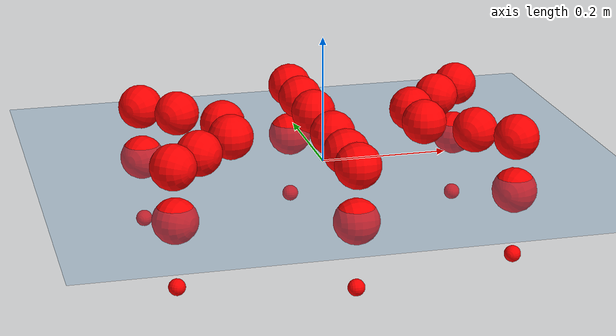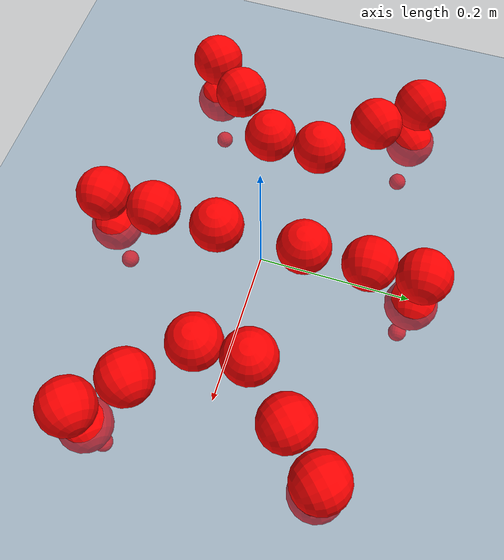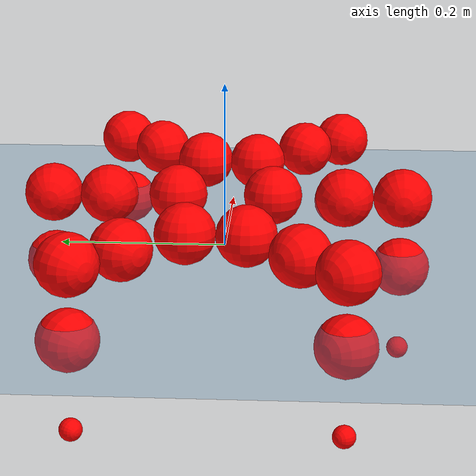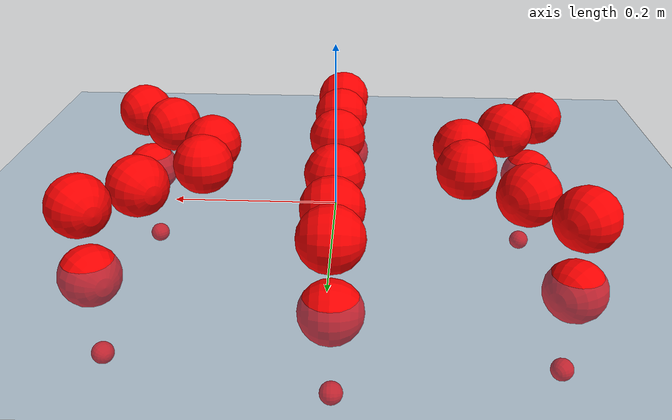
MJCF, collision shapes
<mujoco model="Golem">
  <compiler angle="radian" assetdir="assets" balanceinertia="true" inertiafromgeom="false"/>

  <option timestep="0.005" density="1.2" viscosity="2e-05"/>

  <size nkey="1"/>

  <visual>
    <quality shadowsize="8192"/>
    <map shadowclip="0.5"/>
  </visual>

  <default>
    <default class="/">
      <joint armature="0.01" damping="0.01" frictionloss="0.01"/>
      <geom contype="0" conaffinity="0" group="1" solref="-1000 -80"/>
      <site size="0.01 0.005 0.005" group="5"/>
      <general forcelimited="true" biastype="affine" gainprm="25" biasprm="0 -25 -0.5"/>
      <default class="visual">
        <geom type="mesh" group="2"/>
      </default>
      <default class="collision">
        <geom group="3"/>
      </default>
      <default class="foot">
        <geom size="0.01 0 0" condim="6" group="4" priority="1" solimp="0.015 1 0.01"/>
      </default>
      <default class="reward_collision_sphere">
        <geom group="5" rgba="1 0 0 1"/>
      </default>
    </default>
  </default>

  <asset>
    <texture type="skybox" colorspace="auto" name="//unnamed_texture_0" builtin="gradient" rgb1="0.95 0.95 0.95" rgb2="0.95 0.95 0.95" width="100" height="600"/>
    <texture type="2d" colorspace="auto" name="texplane" builtin="checker" rgb1="0.345 0.575 0.748" rgb2="0.345 0.575 0.748" markrgb="1 1 1" width="512" height="512"/>
    <material name="MatPlane" class="/" texture="texplane" texuniform="true" texrepeat="2 2" specular="0.9"/>
    <mesh name="body" class="/" file="body.stl" scale="0.001 0.001 0.001"/>
    <mesh name="coxa" class="/" file="coxa.stl" scale="0.001 0.001 0.001"/>
    <mesh name="femur" class="/" file="femur.stl" scale="0.001 0.001 0.001"/>
    <mesh name="tibia" class="/" file="tibia.stl" scale="0.001 0.001 0.001"/>
    <mesh name="tarsus" class="/" file="tarsus.stl" scale="0.001 0.001 0.001"/>
  </asset>

  <worldbody>
    <geom name="floor" class="/" size="100 100 0.125" type="plane" group="0" material="MatPlane"/>
    <light name="toplight_shadow" class="/" pos="0 0 5" dir="0.0990148 0.0990148 -0.990148" type="directional" ambient="0.04 0.04 0.04" diffuse="0.55 0.55 0.55" specular="0.12 0.12 0.12"/>
    <light name="toplight_fill" class="/" pos="0 0 5" dir="0.0990148 0.0990148 -0.990148" type="directional" castshadow="false" ambient="0.04 0.04 0.04" diffuse="0.3 0.3 0.3" specular="0.08 0.08 0.08"/>
    <body name="trunk" pos="0.000447221 9.11786e-05 -0.000778662" quat="1 0.000341949 -0.000317597 -6.5466e-05">
      <inertial pos="0.000293748 -0.000559514 -0.00399492" quat="0.999991 -0.00108378 0.0018636 0.00374055" mass="2.53014" diaginertia="0.00907843 0.00118933 0.0102681"/>
      <joint name="//unnamed_joint_0" type="free"/>
      <geom name="//unnamed_geom_1" class="/" pos="0 0 0.0642943" quat="1 0 0 0" type="mesh" rgba="0.9 0.9 0.9 1" mesh="body"/>
      <site name="imu" class="/" pos="0.132026 -9.83769e-05 0.10153" size="0.0087862"/>
      <camera name="track" class="/" pos="0 -1.30227 0" quat="0.707107 0.707107 0 0" mode="trackcom"/>
      <camera name="ego_camera" class="/" pos="0.127417 0 0.10046" quat="-0.5 -0.5 0.5 0.5"/>
      <body name="coxa_RR" pos="-0.174668 -0.0544461 0.0641276" quat="0.383167 -0.000525025 -0.000170689 -0.923679">
        <inertial pos="-0.00120693 0.00074899 0.000835711" quat="0.999999 0.00031249 -0.0013822 -0.000130394" mass="0.134712" diaginertia="0.00905808 0.00118014 0.0101101"/>
        <joint name="coxa_joint_RR" class="/" pos="0 0 0" axis="0.0004509 0.000390182 -1" range="-3.1199 3.14728" armature="0.00893843" damping="0.00869232" frictionloss="0.00891916"/>
        <geom name="//unnamed_geom_2" class="/" type="mesh" rgba="0.2 0.2 0.2 1" mesh="coxa"/>
        <geom name="//unnamed_geom_3" class="reward_collision_sphere" size="0.0351448" pos="-0.0294038 0 0"/>
        <body name="femur_RR" pos="0.0569945 0.00015235 -0.00126684" quat="0.500344 -0.499769 0.500216 0.499671">
          <inertial pos="-0.000178579 0.000677975 0.000671238" quat="1 0.000179517 -0.000311116 7.88549e-05" mass="0.135191" diaginertia="0.00904253 0.00116827 0.0100759"/>
          <joint name="femur_joint_RR" class="/" pos="0 0 0" axis="-0.000208743 -7.05434e-06 -1" range="-3.14539 3.13516" armature="0.00919707" damping="0.0036448" frictionloss="0.00897339"/>
          <geom name="//unnamed_geom_4" class="/" type="mesh" rgba="0.9 0.9 0.9 1" mesh="femur"/>
          <geom name="//unnamed_geom_5" class="reward_collision_sphere" size="0.0351448"/>
          <body name="tibia_RR" pos="0.00100695 -0.0697386 0.00171597" quat="-3.28356e-05 1 -3.88382e-05 -4.61614e-05">
            <inertial pos="0.000976649 0.000637849 -0.000763664" quat="0.999998 0.00179457 -0.000264586 -0.000409422" mass="0.136999" diaginertia="0.00913286 0.00117989 0.0104036"/>
            <joint name="tibia_joint_RR" class="/" pos="0 0 0" axis="0.000935109 0.000255217 1" range="-3.13921 3.14762" armature="0.00890519" damping="0" frictionloss="0.00900365"/>
            <geom name="//unnamed_geom_6" class="/" type="mesh" rgba="0.2 0.2 0.2 1" mesh="tibia"/>
            <geom name="//unnamed_geom_7" class="reward_collision_sphere" size="0.0351448"/>
            <body name="tarsus_RR" pos="0.0837783 -0.00104073 -0.0006719" quat="1 -7.00107e-05 -0.000110237 0.000311913">
              <inertial pos="0.0576698 -0.000626854 -0.000779248" quat="0.500126 0.49943 0.501219 0.499222" mass="0.132936" diaginertia="0.00905363 0.00115786 0.010083"/>
              <joint name="tarsus_joint_RR" class="/" pos="0 0 0" axis="-0.000250041 -0.00280737 0.999996" range="-3.13979 3.1324" armature="0.00888078" damping="0.00168121" frictionloss="0.00856872"/>
              <geom name="//unnamed_geom_8" class="/" type="mesh" rgba="0.9 0.9 0.9 1" mesh="tarsus"/>
              <geom name="foot_1" class="foot" size="0.00850702" pos="0.109774 0 0" quat="0 -0.707107 0 0.707107"/>
              <geom name="//unnamed_geom_10" class="reward_collision_sphere" size="0.0351448"/>
              <geom name="//unnamed_geom_11" class="reward_collision_sphere" size="0.0131793" pos="0.105364 0 0"/>
              <site name="foot_1" class="foot" pos="0.109774 0 0" quat="0 -0.707107 0 0.707107" size="0.0087862"/>
            </body>
          </body>
        </body>
      </body>
      <body name="coxa_RM" pos="0.000262509 -0.0876592 0.0651083" quat="0.706841 0.000185699 -0.000137175 -0.707373">
        <inertial pos="5.57833e-05 0.000848045 -0.00107669" quat="0.999999 0.00024826 0.000841701 0.00128579" mass="0.135951" diaginertia="0.00911171 0.00116929 0.010174"/>
        <joint name="coxa_joint_RM" class="/" pos="0 0 0" axis="-4.53079e-05 -2.18204e-05 -1" range="-3.13826 3.12834" armature="0.00908188" damping="0.0112896" frictionloss="0.00845441"/>
        <geom name="//unnamed_geom_12" class="/" type="mesh" rgba="0.2 0.2 0.2 1" mesh="coxa"/>
        <geom name="//unnamed_geom_13" class="reward_collision_sphere" size="0.0351448" pos="-0.0294038 0 0"/>
        <body name="femur_RM" pos="0.0567333 -0.00144199 -0.00137104" quat="0.500201 -0.499376 0.50013 0.500292">
          <inertial pos="-0.000215149 0.000504471 -0.000288673" quat="0.999989 -0.00454134 -9.98318e-05 0.00129771" mass="0.135105" diaginertia="0.00909254 0.0011833 0.0102553"/>
          <joint name="femur_joint_RM" class="/" pos="0 0 0" axis="6.06604e-05 0.00310034 -0.999995" range="-3.14228 3.14227" armature="0.00929398" damping="0.0123497" frictionloss="0.00890056"/>
          <geom name="//unnamed_geom_14" class="/" type="mesh" rgba="0.9 0.9 0.9 1" mesh="femur"/>
          <geom name="//unnamed_geom_15" class="reward_collision_sphere" size="0.0351448"/>
          <body name="tibia_RM" pos="-0.00117535 -0.0695337 -0.000612858" quat="-5.04484e-05 1 -6.696e-05 -6.38982e-05">
            <inertial pos="0.000658361 -0.000276345 -0.000472955" quat="1 -3.58406e-05 8.53158e-05 -5.19218e-05" mass="0.134368" diaginertia="0.00894473 0.0011682 0.0102873"/>
            <joint name="tibia_joint_RM" class="/" pos="0 0 0" axis="-0.000228 -2.70527e-05 1" range="-3.14007 3.13535" armature="0.00876544" damping="0.00348266" frictionloss="0.00904347"/>
            <geom name="//unnamed_geom_16" class="/" type="mesh" rgba="0.2 0.2 0.2 1" mesh="tibia"/>
            <geom name="//unnamed_geom_17" class="reward_collision_sphere" size="0.0351448"/>
            <body name="tarsus_RM" pos="0.0865114 -0.000297977 0.0018151" quat="1 -1.26585e-05 8.75789e-05 0.000413323">
              <inertial pos="0.0597267 0.000243278 0.00117406" quat="0.500108 0.498665 0.500148 0.501076" mass="0.135874" diaginertia="0.00902106 0.00117203 0.0102138"/>
              <joint name="tarsus_joint_RM" class="/" pos="0 0 0" axis="0.00162074 -0.000884508 0.999998" range="-3.13669 3.16967" armature="0.00876801" damping="0" frictionloss="0.00861081"/>
              <geom name="//unnamed_geom_18" class="/" type="mesh" rgba="0.9 0.9 0.9 1" mesh="tarsus"/>
              <geom name="foot_2" class="foot" size="0.00865704" pos="0.109774 0 0" quat="0 -0.707107 0 0.707107"/>
              <geom name="//unnamed_geom_20" class="reward_collision_sphere" size="0.0351448"/>
              <geom name="//unnamed_geom_21" class="reward_collision_sphere" size="0.0131793" pos="0.105364 0 0"/>
              <site name="foot_2" class="foot" pos="0.109774 0 0" quat="0 -0.707107 0 0.707107" size="0.0087862"/>
            </body>
          </body>
        </body>
      </body>
      <body name="coxa_RF" pos="0.1756 -0.0544236 0.0638473" quat="0.92396 0.000158493 -0.000354585 -0.382489">
        <inertial pos="0.000833052 -0.000456203 -0.00019601" quat="1 0.000499782 -0.000619868 -0.000240153" mass="0.135063" diaginertia="0.00909899 0.00116959 0.0102421"/>
        <joint name="coxa_joint_RF" class="/" pos="0 0 0" axis="-0.00065707 -0.00176402 -0.999998" range="-3.13614 3.1283" armature="0.00871691" damping="0" frictionloss="0.00913624"/>
        <geom name="//unnamed_geom_22" class="/" type="mesh" rgba="0.2 0.2 0.2 1" mesh="coxa"/>
        <geom name="//unnamed_geom_23" class="reward_collision_sphere" size="0.0351448" pos="-0.0294038 0 0"/>
        <body name="femur_RF" pos="0.0581985 0.00161757 0.000594044" quat="0.500279 -0.500531 0.499738 0.499451">
          <inertial pos="0.000733364 -0.000575652 0.00104377" quat="0.99999 0.00302931 -0.000430609 0.0031611" mass="0.137333" diaginertia="0.0091548 0.00119129 0.010351"/>
          <joint name="femur_joint_RF" class="/" pos="0 0 0" axis="0.00110823 -0.00094422 -0.999999" range="-3.15838 3.12022" armature="0.00856019" damping="0.00844006" frictionloss="0.00892462"/>
          <geom name="//unnamed_geom_24" class="/" type="mesh" rgba="0.9 0.9 0.9 1" mesh="femur"/>
          <geom name="//unnamed_geom_25" class="reward_collision_sphere" size="0.0351448"/>
          <body name="tibia_RF" pos="-0.000138773 -0.0703176 0.000500873" quat="6.64561e-05 1 6.35728e-05 3.48032e-05">
            <inertial pos="-0.000145674 0.000228429 0.000123134" quat="0.999991 0.0013944 -0.000864926 0.00399176" mass="0.131736" diaginertia="0.00886866 0.00115378 0.0101405"/>
            <joint name="tibia_joint_RF" class="/" pos="0 0 0" axis="0.000202855 0.000389764 1" range="-3.1385 3.13517" armature="0.00870232" damping="0" frictionloss="0.0088086"/>
            <geom name="//unnamed_geom_26" class="/" type="mesh" rgba="0.2 0.2 0.2 1" mesh="tibia"/>
            <geom name="//unnamed_geom_27" class="reward_collision_sphere" size="0.0351448"/>
            <body name="tarsus_RF" pos="0.0864345 -0.000940951 -0.000134036" quat="1 9.89529e-05 0.000178977 0.000236234">
              <inertial pos="0.0589006 -1.98243e-05 6.19729e-05" quat="0.500259 0.499787 0.49984 0.500113" mass="0.134853" diaginertia="0.00893939 0.00117771 0.0101843"/>
              <joint name="tarsus_joint_RF" class="/" pos="0 0 0" axis="-0.00078096 -0.00283051 0.999996" range="-3.13311 3.13344" armature="0.00893244" damping="0" frictionloss="0.00856099"/>
              <geom name="//unnamed_geom_28" class="/" type="mesh" rgba="0.9 0.9 0.9 1" mesh="tarsus"/>
              <geom name="foot_3" class="foot" size="0.0089666" pos="0.109774 0 0" quat="0 -0.707107 0 0.707107"/>
              <geom name="//unnamed_geom_30" class="reward_collision_sphere" size="0.0351448"/>
              <geom name="//unnamed_geom_31" class="reward_collision_sphere" size="0.0131793" pos="0.105364 0 0"/>
              <site name="foot_3" class="foot" pos="0.109774 0 0" quat="0 -0.707107 0 0.707107" size="0.0087862"/>
            </body>
          </body>
        </body>
      </body>
      <body name="coxa_LR" pos="-0.173864 0.0561112 0.0653087" quat="0.382632 0.000121173 0.000132981 0.923901">
        <inertial pos="0.00019185 0.000480687 0.000716922" quat="0.999997 0.00204538 -0.000497998 -0.00116462" mass="0.134968" diaginertia="0.00890396 0.0011515 0.0100136"/>
        <joint name="coxa_joint_LR" class="/" pos="0 0 0" axis="-0.000122639 -0.00440047 -0.99999" range="-3.14219 3.12865" armature="0.00851679" damping="0.00892365" frictionloss="0.00869433"/>
        <geom name="//unnamed_geom_32" class="/" type="mesh" rgba="0.2 0.2 0.2 1" mesh="coxa"/>
        <geom name="//unnamed_geom_33" class="reward_collision_sphere" size="0.0351448" pos="-0.0294038 0 0"/>
        <body name="femur_LR" pos="0.0591371 -0.0026955 0.000333071" quat="0.500138 -0.500021 0.499828 0.500013">
          <inertial pos="-0.000258685 0.00069554 -0.00133091" quat="0.999989 -0.00162969 -0.00395827 0.00196668" mass="0.133076" diaginertia="0.00898299 0.00116098 0.0101797"/>
          <joint name="femur_joint_LR" class="/" pos="0 0 0" axis="0.00532627 -0.00264512 0.999982" range="-3.13557 3.13789" armature="0.00844642" damping="0.00394019" frictionloss="0.00856499"/>
          <geom name="//unnamed_geom_34" class="/" type="mesh" rgba="0.9 0.9 0.9 1" mesh="femur"/>
          <geom name="//unnamed_geom_35" class="reward_collision_sphere" size="0.0351448"/>
          <body name="tibia_LR" pos="0.000606437 -0.0715871 -0.000795945" quat="5.40727e-05 1 4.64405e-06 -4.52322e-05">
            <inertial pos="-0.000678714 0.000599259 0.000181469" quat="1 -0.00075996 0.000354293 0.000177421" mass="0.134367" diaginertia="0.0088692 0.00115755 0.0101483"/>
            <joint name="tibia_joint_LR" class="/" pos="0 0 0" axis="-0.000757328 -0.00615198 -0.999981" range="-3.1394 3.10761" armature="0.00943835" damping="0" frictionloss="0.00852422"/>
            <geom name="//unnamed_geom_36" class="/" type="mesh" rgba="0.2 0.2 0.2 1" mesh="tibia"/>
            <geom name="//unnamed_geom_37" class="reward_collision_sphere" size="0.0351448"/>
            <body name="tarsus_LR" pos="0.08595 0.000812766 0.00190882" quat="1 1.25582e-05 -1.89551e-05 -4.02404e-05">
              <inertial pos="0.0603717 -0.000203182 -0.00149874" quat="0.500015 0.499932 0.500138 0.499916" mass="0.136342" diaginertia="0.00901558 0.00116957 0.0103379"/>
              <joint name="tarsus_joint_LR" class="/" pos="0 0 0" axis="0.000142546 -0.0001552 -1" stiffness="0.000536542" range="-3.15532 3.15719" armature="0.00895424" damping="0" frictionloss="0.00875161"/>
              <geom name="//unnamed_geom_38" class="/" type="mesh" rgba="0.9 0.9 0.9 1" mesh="tarsus"/>
              <geom name="foot_4" class="foot" size="0.00870239" pos="0.109774 0 0" quat="0.707107 0 -0.707107 0"/>
              <geom name="//unnamed_geom_40" class="reward_collision_sphere" size="0.0351448"/>
              <geom name="//unnamed_geom_41" class="reward_collision_sphere" size="0.0131793" pos="0.105364 0 0"/>
              <site name="foot_4" class="foot" pos="0.109774 0 0" quat="0.707107 0 -0.707107 0" size="0.0087862"/>
            </body>
          </body>
        </body>
      </body>
      <body name="coxa_LM" pos="-0.00163727 0.0852553 0.065656" quat="0.707047 0.000161054 -7.33632e-05 0.707166">
        <inertial pos="0.000116615 -0.000666768 0.00188766" quat="0.999989 -0.000652703 -0.00235267 -0.00404403" mass="0.133894" diaginertia="0.0090937 0.00116679 0.0101727"/>
        <joint name="coxa_joint_LM" class="/" pos="0 0 0" axis="2.4876e-05 0.000360875 -1" range="-3.13659 3.15053" armature="0.0082709" damping="0.00861189" frictionloss="0.00881758"/>
        <geom name="//unnamed_geom_42" class="/" type="mesh" rgba="0.2 0.2 0.2 1" mesh="coxa"/>
        <geom name="//unnamed_geom_43" class="reward_collision_sphere" size="0.0351448" pos="-0.0294038 0 0"/>
        <body name="femur_LM" pos="0.0540883 0.00144467 -0.000833309" quat="0.500115 -0.500175 0.499791 0.499919">
          <inertial pos="-0.00128121 -0.00100199 0.000690312" quat="1 0.000408597 -5.61977e-05 0.000357744" mass="0.132789" diaginertia="0.00899804 0.0011454 0.0101318"/>
          <joint name="femur_joint_LM" class="/" pos="0 0 0" axis="0.000853616 0.00548593 0.999985" range="-3.13866 3.14172" armature="0.00859842" damping="0.00596525" frictionloss="0.00873043"/>
          <geom name="//unnamed_geom_44" class="/" type="mesh" rgba="0.9 0.9 0.9 1" mesh="femur"/>
          <geom name="//unnamed_geom_45" class="reward_collision_sphere" size="0.0351448"/>
          <body name="tibia_LM" pos="-0.00132169 -0.0672479 0.00173272" quat="8.56289e-05 1 5.3455e-05 7.67435e-05">
            <inertial pos="0.000101091 -0.00127736 -0.000350101" quat="1 -0.000564283 1.29948e-05 0.000204759" mass="0.132927" diaginertia="0.00900716 0.00116468 0.0101391"/>
            <joint name="tibia_joint_LM" class="/" pos="0 0 0" axis="0.000766159 -0.000882085 -0.999999" range="-3.13063 3.14844" armature="0.00887569" damping="0.00690821" frictionloss="0.00838823"/>
            <geom name="//unnamed_geom_46" class="/" type="mesh" rgba="0.2 0.2 0.2 1" mesh="tibia"/>
            <geom name="//unnamed_geom_47" class="reward_collision_sphere" size="0.0351448"/>
            <body name="tarsus_LM" pos="0.0856299 -0.000107838 0.000223301" quat="1 -1.72878e-05 2.33869e-05 -1.08758e-05">
              <inertial pos="0.0598823 -0.000675817 0.000375323" quat="0.500057 0.499959 0.499814 0.500169" mass="0.1352" diaginertia="0.00910294 0.00117729 0.0101876"/>
              <joint name="tarsus_joint_LM" class="/" pos="0 0 0" axis="-0.00245888 -0.00437205 -0.999987" range="-3.1366 3.14447" armature="0.00870463" damping="0.000914884" frictionloss="0.00884433"/>
              <geom name="//unnamed_geom_48" class="/" type="mesh" rgba="0.9 0.9 0.9 1" mesh="tarsus"/>
              <geom name="foot_5" class="foot" size="0.00879032" pos="0.109774 0 0" quat="0.707107 0 -0.707107 0"/>
              <geom name="//unnamed_geom_50" class="reward_collision_sphere" size="0.0351448"/>
              <geom name="//unnamed_geom_51" class="reward_collision_sphere" size="0.0131793" pos="0.105364 0 0"/>
              <site name="foot_5" class="foot" pos="0.109774 0 0" quat="0.707107 0 -0.707107 0" size="0.0087862"/>
            </body>
          </body>
        </body>
      </body>
      <body name="coxa_LF" pos="0.174588 0.0544699 0.0650025" quat="0.923862 -1.24221e-05 -2.22916e-05 0.382725">
        <inertial pos="-1.14684e-05 0.000156984 -0.000504415" quat="0.999992 0.000561396 0.00378035 0.0015458" mass="0.135137" diaginertia="0.0092138 0.00117095 0.0102324"/>
        <joint name="coxa_joint_LF" class="/" pos="0 0 0" axis="0.00366706 0.00096332 -0.999993" range="-3.12866 3.12902" armature="0.00916083" damping="0.00345683" frictionloss="0.00874515"/>
        <geom name="//unnamed_geom_52" class="/" type="mesh" rgba="0.2 0.2 0.2 1" mesh="coxa"/>
        <geom name="//unnamed_geom_53" class="reward_collision_sphere" size="0.0351448" pos="-0.0294038 0 0"/>
        <body name="femur_LF" pos="0.0574578 0.000788068 0.000155762" quat="0.500006 -0.499999 0.499962 0.500033">
          <inertial pos="-0.000176035 -0.000656565 0.000265064" quat="0.999991 -0.00197893 -0.00138612 0.00335701" mass="0.136368" diaginertia="0.00903661 0.00117136 0.0102504"/>
          <joint name="femur_joint_LF" class="/" pos="0 0 0" axis="-0.0006726 -0.00542295 0.999985" stiffness="0.000889507" range="-3.15079 3.13754" armature="0.0088192" damping="0" frictionloss="0.00877183"/>
          <geom name="//unnamed_geom_54" class="/" type="mesh" rgba="0.9 0.9 0.9 1" mesh="femur"/>
          <geom name="//unnamed_geom_55" class="reward_collision_sphere" size="0.0351448"/>
          <body name="tibia_LF" pos="-0.000349791 -0.0717665 0.00152196" quat="-0.000155624 1 -0.000135242 8.59816e-05">
            <inertial pos="-0.000123797 -7.05122e-05 -0.000418808" quat="0.99997 -0.00112063 0.00752284 0.00114699" mass="0.137354" diaginertia="0.00911131 0.00117612 0.0102954"/>
            <joint name="tibia_joint_LF" class="/" pos="0 0 0" axis="0.00165328 0.00516623 -0.999985" range="-3.13803 3.12105" armature="0.00868954" damping="0.000424455" frictionloss="0.00857495"/>
            <geom name="//unnamed_geom_56" class="/" type="mesh" rgba="0.2 0.2 0.2 1" mesh="tibia"/>
            <geom name="//unnamed_geom_57" class="reward_collision_sphere" size="0.0351448"/>
            <body name="tarsus_LF" pos="0.0857266 -0.000367023 -0.000953888" quat="1 -0.000113016 5.92265e-05 0.000142991">
              <inertial pos="0.0597558 0.00124968 1.03285e-05" quat="0.500173 0.499847 0.499776 0.500204" mass="0.133244" diaginertia="0.00894174 0.00115466 0.0101072"/>
              <joint name="tarsus_joint_LF" class="/" pos="0 0 0" axis="-0.00380683 -0.00112116 -0.999992" range="-3.13775 3.1193" armature="0.00912581" damping="0.00856564" frictionloss="0.00864573"/>
              <geom name="//unnamed_geom_58" class="/" type="mesh" rgba="0.9 0.9 0.9 1" mesh="tarsus"/>
              <geom name="foot_6" class="foot" size="0.00857956" pos="0.109774 0 0" quat="0.707107 0 -0.707107 0"/>
              <geom name="//unnamed_geom_60" class="reward_collision_sphere" size="0.0351448"/>
              <geom name="//unnamed_geom_61" class="reward_collision_sphere" size="0.0131793" pos="0.105364 0 0"/>
              <site name="foot_6" class="foot" pos="0.109774 0 0" quat="0.707107 0 -0.707107 0" size="0.0087862"/>
            </body>
          </body>
        </body>
      </body>
    </body>
  </worldbody>

  <contact>
    <pair class="/" geom1="floor" geom2="foot_1" name="//unnamed_contact_0"/>
    <pair class="/" geom1="floor" geom2="foot_2" name="//unnamed_contact_1"/>
    <pair class="/" geom1="floor" geom2="foot_3" name="//unnamed_contact_2"/>
    <pair class="/" geom1="floor" geom2="foot_4" name="//unnamed_contact_3"/>
    <pair class="/" geom1="floor" geom2="foot_5" name="//unnamed_contact_4"/>
    <pair class="/" geom1="floor" geom2="foot_6" name="//unnamed_contact_5"/>
  </contact>

  <actuator>
    <general name="coxa_joint_RR" class="/" joint="coxa_joint_RR" forcerange="-6.41362 6.41362" gainprm="21.2222" biasprm="0 -21.2222 -0.452623"/>
    <general name="femur_joint_RR" class="/" joint="femur_joint_RR" forcerange="-6.23359 6.23359" gainprm="21.2222" biasprm="0 -21.2222 -0.452623"/>
    <general name="tibia_joint_RR" class="/" joint="tibia_joint_RR" forcerange="-6.33691 6.33691" gainprm="21.2222" biasprm="0 -21.2222 -0.452623"/>
    <general name="tarsus_joint_RR" class="/" joint="tarsus_joint_RR" forcerange="-6.22473 6.22473" gainprm="21.2222" biasprm="0 -21.2222 -0.452623"/>
    <general name="coxa_joint_RM" class="/" joint="coxa_joint_RM" forcerange="-6.79231 6.79231" gainprm="21.2222" biasprm="0 -21.2222 -0.452623"/>
    <general name="femur_joint_RM" class="/" joint="femur_joint_RM" forcerange="-6.45182 6.45182" gainprm="21.2222" biasprm="0 -21.2222 -0.452623"/>
    <general name="tibia_joint_RM" class="/" joint="tibia_joint_RM" forcerange="-6.21226 6.21226" gainprm="21.2222" biasprm="0 -21.2222 -0.452623"/>
    <general name="tarsus_joint_RM" class="/" joint="tarsus_joint_RM" forcerange="-6.33067 6.33067" gainprm="21.2222" biasprm="0 -21.2222 -0.452623"/>
    <general name="coxa_joint_RF" class="/" joint="coxa_joint_RF" forcerange="-6.42331 6.42331" gainprm="21.2222" biasprm="0 -21.2222 -0.452623"/>
    <general name="femur_joint_RF" class="/" joint="femur_joint_RF" forcerange="-6.40782 6.40782" gainprm="21.2222" biasprm="0 -21.2222 -0.452623"/>
    <general name="tibia_joint_RF" class="/" joint="tibia_joint_RF" forcerange="-6.46847 6.46847" gainprm="21.2222" biasprm="0 -21.2222 -0.452623"/>
    <general name="tarsus_joint_RF" class="/" joint="tarsus_joint_RF" forcerange="-6.4025 6.4025" gainprm="21.2222" biasprm="0 -21.2222 -0.452623"/>
    <general name="coxa_joint_LR" class="/" joint="coxa_joint_LR" forcerange="-6.59953 6.59953" gainprm="21.2222" biasprm="0 -21.2222 -0.452623"/>
    <general name="femur_joint_LR" class="/" joint="femur_joint_LR" forcerange="-6.42527 6.42527" gainprm="21.2222" biasprm="0 -21.2222 -0.452623"/>
    <general name="tibia_joint_LR" class="/" joint="tibia_joint_LR" forcerange="-6.32971 6.32971" gainprm="21.2222" biasprm="0 -21.2222 -0.452623"/>
    <general name="tarsus_joint_LR" class="/" joint="tarsus_joint_LR" forcerange="-6.65996 6.65996" gainprm="21.2222" biasprm="0 -21.2222 -0.452623"/>
    <general name="coxa_joint_LM" class="/" joint="coxa_joint_LM" forcerange="-6.36047 6.36047" gainprm="21.2222" biasprm="0 -21.2222 -0.452623"/>
    <general name="femur_joint_LM" class="/" joint="femur_joint_LM" forcerange="-6.31696 6.31696" gainprm="21.2222" biasprm="0 -21.2222 -0.452623"/>
    <general name="tibia_joint_LM" class="/" joint="tibia_joint_LM" forcerange="-6.55873 6.55873" gainprm="21.2222" biasprm="0 -21.2222 -0.452623"/>
    <general name="tarsus_joint_LM" class="/" joint="tarsus_joint_LM" forcerange="-6.76617 6.76617" gainprm="21.2222" biasprm="0 -21.2222 -0.452623"/>
    <general name="coxa_joint_LF" class="/" joint="coxa_joint_LF" forcerange="-6.51858 6.51858" gainprm="21.2222" biasprm="0 -21.2222 -0.452623"/>
    <general name="femur_joint_LF" class="/" joint="femur_joint_LF" forcerange="-6.54179 6.54179" gainprm="21.2222" biasprm="0 -21.2222 -0.452623"/>
    <general name="tibia_joint_LF" class="/" joint="tibia_joint_LF" forcerange="-6.53074 6.53074" gainprm="21.2222" biasprm="0 -21.2222 -0.452623"/>
    <general name="tarsus_joint_LF" class="/" joint="tarsus_joint_LF" forcerange="-6.64021 6.64021" gainprm="21.2222" biasprm="0 -21.2222 -0.452623"/>
  </actuator>

  <sensor>
    <gyro site="imu" name="imu_angular_velocity"/>
    <velocimeter site="imu" name="imu_linear_velocity"/>
    <framelinvel objtype="site" objname="foot_1" name="foot_1_global_linear_velocity"/>
    <framelinvel objtype="site" objname="foot_2" name="foot_2_global_linear_velocity"/>
    <framelinvel objtype="site" objname="foot_3" name="foot_3_global_linear_velocity"/>
    <framelinvel objtype="site" objname="foot_4" name="foot_4_global_linear_velocity"/>
    <framelinvel objtype="site" objname="foot_5" name="foot_5_global_linear_velocity"/>
    <framelinvel objtype="site" objname="foot_6" name="foot_6_global_linear_velocity"/>
  </sensor>

  <keyframe>
    <key name="home" qpos="0 0 0.1457 1 0 0 0 0 0 0 0 0 0 0 0 0 0 0 0 0 0 0 0 0 0 0 0 0 0 0 0"/>
  </keyframe>
</mujoco>
